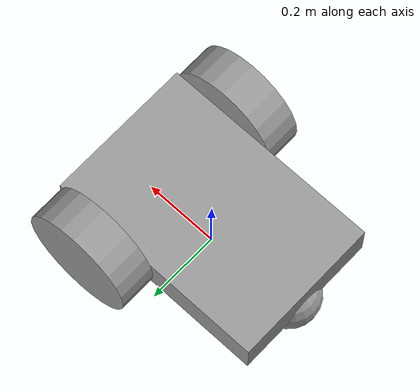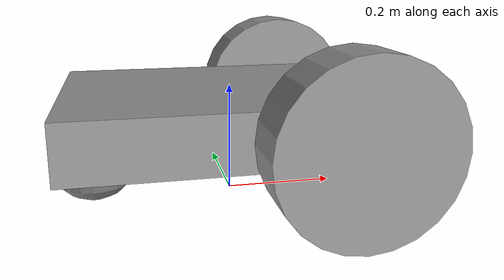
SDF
<?xml version='1.0'?>
<sdf version='1.6'>
  <model name='robot'>
    <link name='body'>
      <pose frame=''>0 0 0.15 0 -0 0</pose>
      <inertial>
        <mass>1</mass>
        <inertia>
          <ixx>0.166667</ixx>
          <ixy>0</ixy>
          <ixz>0</ixz>
          <iyy>0.166667</iyy>
          <iyz>0</iyz>
          <izz>0.166667</izz>
        </inertia>
        <pose frame=''>0 0 0 0 -0 0</pose>
      </inertial>
      <gravity>1</gravity>
      <self_collide>0</self_collide>
      <kinematic>0</kinematic>
      <visual name='visual'>
        <pose frame=''>0 0 0 0 -0 0</pose>
        <geometry>
          <box>
            <size>0.6 0.4 0.1</size>
          </box>
        </geometry>
        <material>
          <lighting>1</lighting>
          <script>
            <uri>file://media/materials/scripts/gazebo.material</uri>
            <name>Gazebo/Grey</name>
          </script>
          <shader type='pixel'>
            <normal_map>__default__</normal_map>
          </shader>
          <ambient>0.3 0.3 0.3 1</ambient>
          <diffuse>0.7 0.7 0.7 1</diffuse>
          <specular>0.01 0.01 0.01 1</specular>
          <emissive>0 0 0 1</emissive>
        </material>
        <transparency>0</transparency>
        <cast_shadows>1</cast_shadows>
      </visual>
      <collision name='collision'>
        <laser_retro>0</laser_retro>
        <max_contacts>10</max_contacts>
        <pose frame=''>0 0 0 0 -0 0</pose>
        <geometry>
          <box>
            <size>0.6 0.4 0.1</size>
          </box>
        </geometry>
        <surface>
          <friction>
            <ode>
              <mu>1</mu>
              <mu2>1</mu2>
              <fdir1>0 0 0</fdir1>
              <slip1>0</slip1>
              <slip2>0</slip2>
            </ode>
            <torsional>
              <coefficient>1</coefficient>
              <patch_radius>0</patch_radius>
              <surface_radius>0</surface_radius>
              <use_patch_radius>1</use_patch_radius>
              <ode>
                <slip>0</slip>
              </ode>
            </torsional>
          </friction>
          <bounce>
            <restitution_coefficient>0</restitution_coefficient>
            <threshold>1e+06</threshold>
          </bounce>
          <contact>
            <collide_without_contact>0</collide_without_contact>
            <collide_without_contact_bitmask>1</collide_without_contact_bitmask>
            <collide_bitmask>1</collide_bitmask>
            <ode>
              <soft_cfm>0</soft_cfm>
              <soft_erp>0.2</soft_erp>
              <kp>1e+13</kp>
              <kd>1</kd>
              <max_vel>0.01</max_vel>
              <min_depth>0</min_depth>
            </ode>
            <bullet>
              <split_impulse>1</split_impulse>
              <split_impulse_penetration_threshold>-0.01</split_impulse_penetration_threshold>
              <soft_cfm>0</soft_cfm>
              <soft_erp>0.2</soft_erp>
              <kp>1e+13</kp>
              <kd>1</kd>
            </bullet>
          </contact>
        </surface>
      </collision>
    </link>
    <link name='left_wheel'>
      <pose frame=''>0.15 -0.25 0.15 1.5707 -0 0</pose>
      <inertial>
        <mass>1</mass>
        <inertia>
          <ixx>0.145833</ixx>
          <ixy>0</ixy>
          <ixz>0</ixz>
          <iyy>0.145833</iyy>
          <iyz>0</iyz>
          <izz>0.125</izz>
        </inertia>
        <pose frame=''>0 0 0 0 -0 0</pose>
      </inertial>
      <gravity>1</gravity>
      <self_collide>0</self_collide>
      <kinematic>0</kinematic>
      <visual name='visual'>
        <pose frame=''>0 0 0 0 -0 0</pose>
        <geometry>
          <cylinder>
            <radius>0.15</radius>
            <length>0.1</length>
          </cylinder>
        </geometry>
        <material>
          <lighting>1</lighting>
          <script>
            <uri>file://media/materials/scripts/gazebo.material</uri>
            <name>Gazebo/Grey</name>
          </script>
          <shader type='pixel'>
            <normal_map>__default__</normal_map>
          </shader>
          <ambient>0.3 0.3 0.3 1</ambient>
          <diffuse>0.7 0.7 0.7 1</diffuse>
          <specular>0.01 0.01 0.01 1</specular>
          <emissive>0 0 0 1</emissive>
        </material>
        <transparency>0</transparency>
        <cast_shadows>1</cast_shadows>
      </visual>
      <collision name='collision'>
        <laser_retro>0</laser_retro>
        <max_contacts>10</max_contacts>
        <pose frame=''>0 0 0 0 -0 0</pose>
        <geometry>
          <cylinder>
            <radius>0.15</radius>
            <length>0.1</length>
          </cylinder>
        </geometry>
        <surface>
          <friction>
            <ode>
              <mu>1</mu>
              <mu2>1</mu2>
              <fdir1>0 0 0</fdir1>
              <slip1>0</slip1>
              <slip2>0</slip2>
            </ode>
            <torsional>
              <coefficient>1</coefficient>
              <patch_radius>0</patch_radius>
              <surface_radius>0</surface_radius>
              <use_patch_radius>1</use_patch_radius>
              <ode>
                <slip>0</slip>
              </ode>
            </torsional>
          </friction>
          <bounce>
            <restitution_coefficient>0</restitution_coefficient>
            <threshold>1e+06</threshold>
          </bounce>
          <contact>
            <collide_without_contact>0</collide_without_contact>
            <collide_without_contact_bitmask>1</collide_without_contact_bitmask>
            <collide_bitmask>1</collide_bitmask>
            <ode>
              <soft_cfm>0</soft_cfm>
              <soft_erp>0.2</soft_erp>
              <kp>1e+13</kp>
              <kd>1</kd>
              <max_vel>0.01</max_vel>
              <min_depth>0</min_depth>
            </ode>
            <bullet>
              <split_impulse>1</split_impulse>
              <split_impulse_penetration_threshold>-0.01</split_impulse_penetration_threshold>
              <soft_cfm>0</soft_cfm>
              <soft_erp>0.2</soft_erp>
              <kp>1e+13</kp>
              <kd>1</kd>
            </bullet>
          </contact>
        </surface>
      </collision>
    </link>
    <link name='right_wheel'>
      <pose frame=''>0.15 0.25 0.15 1.5707 -0 0</pose>
      <inertial>
        <mass>1</mass>
        <inertia>
          <ixx>0.145833</ixx>
          <ixy>0</ixy>
          <ixz>0</ixz>
          <iyy>0.145833</iyy>
          <iyz>0</iyz>
          <izz>0.125</izz>
        </inertia>
        <pose frame=''>0 0 0 0 -0 0</pose>
      </inertial>
      <self_collide>0</self_collide>
      <kinematic>0</kinematic>
      <gravity>1</gravity>
      <visual name='visual'>
        <pose frame=''>0 0 0 0 -0 0</pose>
        <geometry>
          <cylinder>
            <radius>0.15</radius>
            <length>0.1</length>
          </cylinder>
        </geometry>
        <material>
          <lighting>1</lighting>
          <script>
            <uri>file://media/materials/scripts/gazebo.material</uri>
            <name>Gazebo/Grey</name>
          </script>
          <shader type='pixel'>
            <normal_map>__default__</normal_map>
          </shader>
          <ambient>0.3 0.3 0.3 1</ambient>
          <diffuse>0.7 0.7 0.7 1</diffuse>
          <specular>0.01 0.01 0.01 1</specular>
          <emissive>0 0 0 1</emissive>
        </material>
        <transparency>0</transparency>
        <cast_shadows>1</cast_shadows>
      </visual>
      <collision name='collision'>
        <laser_retro>0</laser_retro>
        <max_contacts>10</max_contacts>
        <pose frame=''>0 0 0 0 -0 0</pose>
        <geometry>
          <cylinder>
            <radius>0.15</radius>
            <length>0.1</length>
          </cylinder>
        </geometry>
        <surface>
          <friction>
            <ode>
              <mu>1</mu>
              <mu2>1</mu2>
              <fdir1>0 0 0</fdir1>
              <slip1>0</slip1>
              <slip2>0</slip2>
            </ode>
            <torsional>
              <coefficient>1</coefficient>
              <patch_radius>0</patch_radius>
              <surface_radius>0</surface_radius>
              <use_patch_radius>1</use_patch_radius>
              <ode>
                <slip>0</slip>
              </ode>
            </torsional>
          </friction>
          <bounce>
            <restitution_coefficient>0</restitution_coefficient>
            <threshold>1e+06</threshold>
          </bounce>
          <contact>
            <collide_without_contact>0</collide_without_contact>
            <collide_without_contact_bitmask>1</collide_without_contact_bitmask>
            <collide_bitmask>1</collide_bitmask>
            <ode>
              <soft_cfm>0</soft_cfm>
              <soft_erp>0.2</soft_erp>
              <kp>1e+13</kp>
              <kd>1</kd>
              <max_vel>0.01</max_vel>
              <min_depth>0</min_depth>
            </ode>
            <bullet>
              <split_impulse>1</split_impulse>
              <split_impulse_penetration_threshold>-0.01</split_impulse_penetration_threshold>
              <soft_cfm>0</soft_cfm>
              <soft_erp>0.2</soft_erp>
              <kp>1e+13</kp>
              <kd>1</kd>
            </bullet>
          </contact>
        </surface>
      </collision>
    </link>
    <link name='caster_wheel'>
      <pose frame=''>-0.25 0 0.08 0 -0 0</pose>
      <inertial>
        <mass>1</mass>
        <inertia>
          <ixx>0.1</ixx>
          <ixy>0</ixy>
          <ixz>0</ixz>
          <iyy>0.1</iyy>
          <iyz>0</iyz>
          <izz>0.1</izz>
        </inertia>
        <pose frame=''>0 0 0 0 -0 0</pose>
      </inertial>
      <gravity>1</gravity>
      <self_collide>0</self_collide>
      <kinematic>0</kinematic>
      <visual name='visual'>
        <pose frame=''>0 0 0 0 -0 0</pose>
        <geometry>
          <sphere>
            <radius>0.08</radius>
          </sphere>
        </geometry>
        <material>
          <lighting>1</lighting>
          <script>
            <uri>file://media/materials/scripts/gazebo.material</uri>
            <name>Gazebo/Grey</name>
          </script>
          <shader type='pixel'>
            <normal_map>__default__</normal_map>
          </shader>
          <ambient>0.3 0.3 0.3 1</ambient>
          <diffuse>0.7 0.7 0.7 1</diffuse>
          <specular>0.01 0.01 0.01 1</specular>
          <emissive>0 0 0 1</emissive>
        </material>
        <transparency>0</transparency>
        <cast_shadows>1</cast_shadows>
      </visual>
      <collision name='collision'>
        <laser_retro>0</laser_retro>
        <max_contacts>10</max_contacts>
        <pose frame=''>0 0 0 0 -0 0</pose>
        <geometry>
          <sphere>
            <radius>0.08</radius>
          </sphere>
        </geometry>
        <surface>
          <friction>
            <ode>
              <mu>1</mu>
              <mu2>1</mu2>
              <fdir1>0 0 0</fdir1>
              <slip1>0</slip1>
              <slip2>0</slip2>
            </ode>
            <torsional>
              <coefficient>1</coefficient>
              <patch_radius>0</patch_radius>
              <surface_radius>0</surface_radius>
              <use_patch_radius>1</use_patch_radius>
              <ode>
                <slip>0</slip>
              </ode>
            </torsional>
          </friction>
          <bounce>
            <restitution_coefficient>0</restitution_coefficient>
            <threshold>1e+06</threshold>
          </bounce>
          <contact>
            <collide_without_contact>0</collide_without_contact>
            <collide_without_contact_bitmask>1</collide_without_contact_bitmask>
            <collide_bitmask>1</collide_bitmask>
            <ode>
              <soft_cfm>0</soft_cfm>
              <soft_erp>0.2</soft_erp>
              <kp>1e+13</kp>
              <kd>1</kd>
              <max_vel>0.01</max_vel>
              <min_depth>0</min_depth>
            </ode>
            <bullet>
              <split_impulse>1</split_impulse>
              <split_impulse_penetration_threshold>-0.01</split_impulse_penetration_threshold>
              <soft_cfm>0</soft_cfm>
              <soft_erp>0.2</soft_erp>
              <kp>1e+13</kp>
              <kd>1</kd>
            </bullet>
          </contact>
        </surface>
      </collision>
    </link>
    <joint name='BODY_RW_JOINT' type='revolute'>
      <parent>body</parent>
      <child>right_wheel</child>
      <pose frame=''>0 0 0 0 -0 0</pose>
      <axis>
        <xyz>1 0 0</xyz>
        <use_parent_model_frame>0</use_parent_model_frame>
        <limit>
          <lower>-1.79769e+308</lower>
          <upper>1.79769e+308</upper>
          <effort>-1</effort>
          <velocity>-1</velocity>
        </limit>
        <dynamics>
          <spring_reference>0</spring_reference>
          <spring_stiffness>0</spring_stiffness>
          <damping>0</damping>
        </dynamics>
      </axis>
      <physics>
        <ode>
          <limit>
            <cfm>0</cfm>
            <erp>0.2</erp>
          </limit>
          <suspension>
            <cfm>0</cfm>
            <erp>0.2</erp>
          </suspension>
        </ode>
      </physics>
    </joint>
    <joint name='BODY_LW_JOINT' type='revolute'>
      <parent>body</parent>
      <child>left_wheel</child>
      <pose frame=''>0 0 0 0 -0 0</pose>
      <axis>
        <xyz>1 0 0</xyz>
        <use_parent_model_frame>0</use_parent_model_frame>
        <limit>
          <lower>-1.79769e+308</lower>
          <upper>1.79769e+308</upper>
          <effort>-1</effort>
          <velocity>-1</velocity>
        </limit>
        <dynamics>
          <spring_reference>0</spring_reference>
          <spring_stiffness>0</spring_stiffness>
          <damping>0</damping>
        </dynamics>
      </axis>
      <physics>
        <ode>
          <limit>
            <cfm>0</cfm>
            <erp>0.2</erp>
          </limit>
          <suspension>
            <cfm>0</cfm>
            <erp>0.2</erp>
          </suspension>
        </ode>
      </physics>
    </joint>
    <joint name='BODY_CW_JOINT' type='ball'>
      <parent>body</parent>
      <child>caster_wheel</child>
      <pose frame=''>0 0 0 0 -0 0</pose>
      <physics>
        <ode>
          <limit>
            <cfm>0</cfm>
            <erp>0.2</erp>
          </limit>
          <suspension>
            <cfm>0</cfm>
            <erp>0.2</erp>
          </suspension>
        </ode>
      </physics>
    </joint>
    <static>0</static>
    <allow_auto_disable>1</allow_auto_disable>
  </model>
</sdf>
